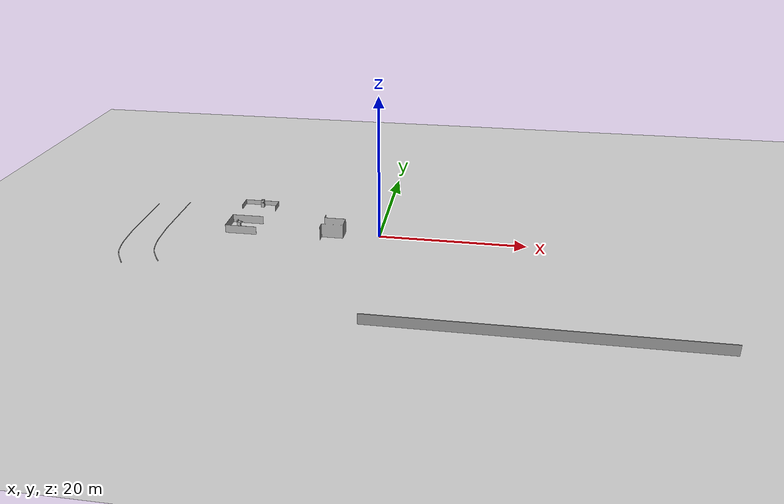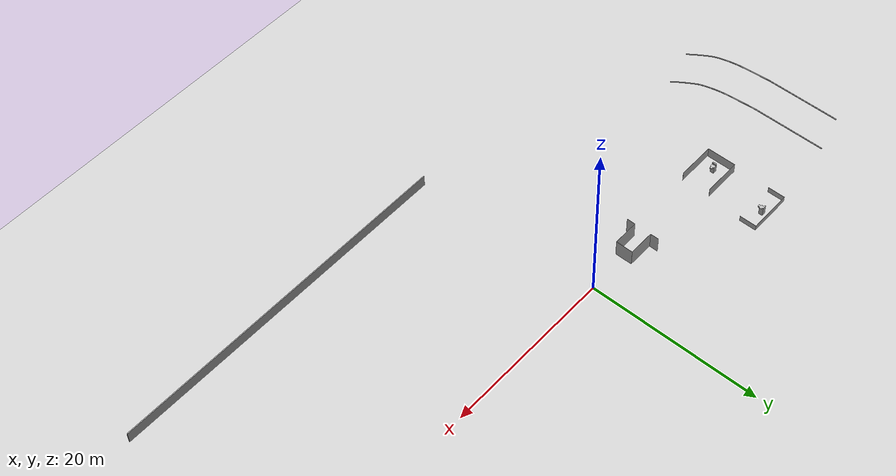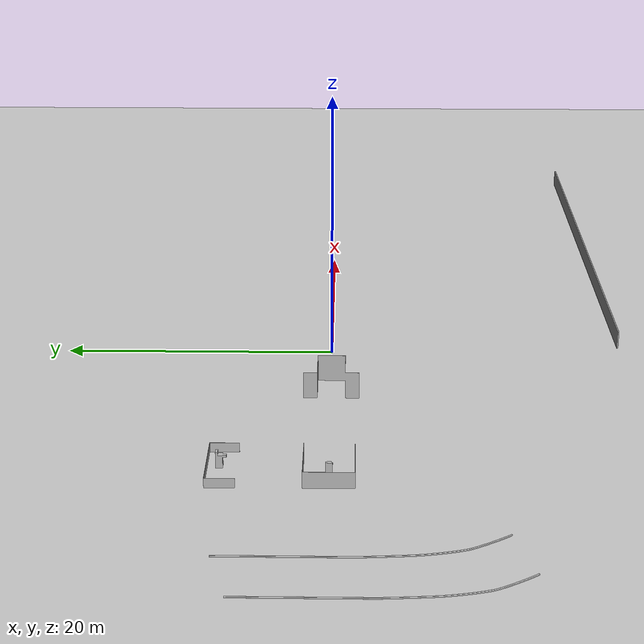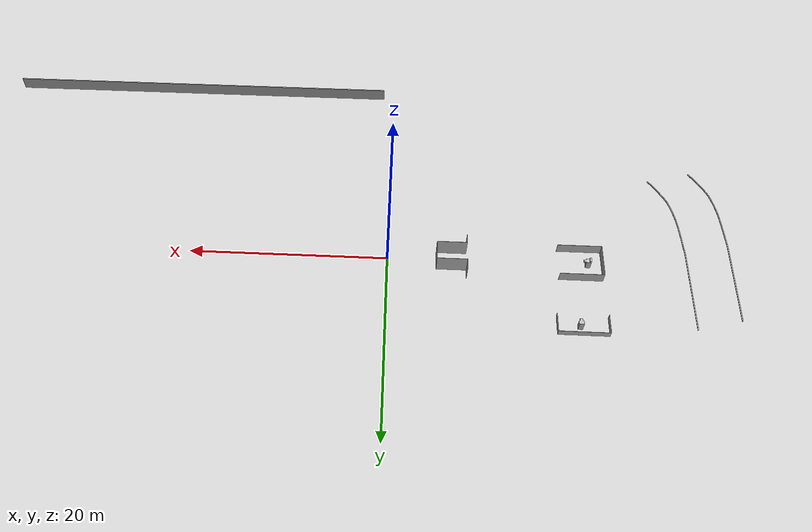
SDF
<sdf version="1.7">
 <world name="default">
  <plugin name="gazebo_ros_state" filename="libgazebo_ros_state.so"/>
  <include><uri>model://ground_plane</uri></include>
  <light name="sun" type="directional">
   <cast_shadows>0</cast_shadows>
   <pose>0 0 10 0 -0 0</pose>
   <diffuse>0.8 0.8 0.8 1</diffuse>
   <specular>0.2 0.2 0.2 1</specular>
   <attenuation>
    <range>1000</range>
    <constant>0.9</constant>
    <linear>0.01</linear>
    <quadratic>0.001</quadratic>
   </attenuation>
   <direction>-0.5 0.1 -0.9</direction>
   <spot><inner_angle>0</inner_angle><outer_angle>0</outer_angle><falloff>0</falloff></spot>
  </light>
  <scene><shadows>0</shadows><ambient>0.4 0.4 0.4 1</ambient><background>0.7 0.7 0.7 1</background></scene>
  <physics type="ode">
   <real_time_update_rate>100</real_time_update_rate>
   <max_step_size>0.01</max_step_size>
   <real_time_factor>1</real_time_factor>
   <ode>
    <solver>
     <type>quick</type>
     <iters>150</iters>
     <precon_iters>0</precon_iters>
     <sor>1.0</sor>
     <use_dynamic_moi_rescaling>0</use_dynamic_moi_rescaling>
    </solver>
    <constraints>
     <cfm>1e-05</cfm>
     <erp>0.2</erp>
     <contact_max_correcting_vel>2000</contact_max_correcting_vel>
     <contact_surface_layer>0.001</contact_surface_layer>
    </constraints>
   </ode>
  </physics>
  <gravity>0 0 -9.8</gravity>
  <magnetic_field>6e-06 2.3e-05 -4.2e-05</magnetic_field>
  <atmosphere type="adiabatic"/>
  <model name="long_box_1">
   <link name="link">
    <inertial>
     <mass>10</mass>
     <inertia>
      <ixx>1.587</ixx>
      <ixy>0</ixy>
      <ixz>0</ixz>
      <iyy>34.872333</iyy>
      <iyz>0</iyz>
      <izz>33.285333</izz>
     </inertia>
    </inertial>
    <pose>-0.148859 -21.6674 0.356896 0 0 1.5708</pose>
    <visual name="visual">
     <geometry><box><size>41.0 0.1 1.38</size></box></geometry>
     <material>
      <script><name>Gazebo/Grey</name><uri>file://media/materials/scripts/gazebo.material</uri></script>
      <shader type="pixel"/>
     </material>
     <cast_shadows>0</cast_shadows>
    </visual>
    <collision name="collision"><geometry><box><size>41.0 0.1 1.38</size></box></geometry></collision>
   </link>
   <static>1</static>
   <allow_auto_disable>false</allow_auto_disable>
   <pose>-0.148859 -21.6674 0.356896 0 0 1.5708</pose>
  </model>
  <include><uri>model://bn_sim</uri><pose>-20 0 0 0 -0 1.57</pose></include>
 </world>
</sdf>

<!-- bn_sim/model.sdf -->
<sdf version="1.6">
  <model name="bn_sim_default">
    <static>true</static>
    <link name="walls">>
      <visual name="walls_v">
        <geometry>
          <mesh>
            <uri>model://bn_sim/meshes/walls.stl</uri>
            <scale>0.1 0.1 0.1</scale>
          </mesh>
        </geometry>
      </visual>
      <collision name="walls_c">
        <geometry>
          <mesh>
            <uri>model://bn_sim/meshes/walls.stl</uri>
            <scale>0.1 0.1 0.1</scale>
          </mesh>
        </geometry>
      </collision>
    </link>
    <link name="charger">
      <visual name="marker_v">
        <pose>0 0 0.04 0 0 0</pose>
        <geometry>
          <mesh>
            <uri>model://bn_sim/meshes/marker.stl</uri>
            <scale>0.15 0.15 0.15</scale>
          </mesh>
        </geometry>
        <material>
          <ambient>0 0 0 1</ambient>
          <diffuse>0 0 0 1</diffuse>
          <specular>0 0 0 1</specular>
          <emissive>0 0 0 1</emissive>
        </material>
      </visual>
      <visual name="charger_v">
        <pose>0 0 0.04 0 0 0</pose>
        <geometry>
          <mesh>
            <uri>model://bn_sim/meshes/charge.stl</uri>
            <scale>0.15 0.15 0.15</scale>
          </mesh>
        </geometry>
      </visual>
      <collision name="charger_c">
        <pose>0 0 0.04 0 0 0</pose>
        <geometry>
          <mesh>
            <uri>model://bn_sim/meshes/charge.stl</uri>
            <scale>0.15 0.15 0.15</scale>
          </mesh>
        </geometry>
      </collision>
    </link>
    <link name="charger_2">
      <pose>7.2 -1.3 0.04 0 0 -1.5708</pose>
      <visual name="marker_v">
        <geometry>
          <mesh>
            <uri>model://bn_sim/meshes/marker.stl</uri>
            <scale>0.15 0.15 0.15</scale>
          </mesh>
        </geometry>
        <material>
          <ambient>0 0 0 1</ambient>
          <diffuse>0 0 0 1</diffuse>
          <specular>0 0 0 1</specular>
          <emissive>0 0 0 1</emissive>
        </material>
      </visual>
      <visual name="charger_v">
        <geometry>
          <mesh>
            <uri>model://bn_sim/meshes/charge.stl</uri>
            <scale>0.15 0.15 0.15</scale>
          </mesh>
        </geometry>
      </visual>
      <collision name="charger_c">
        <geometry>
          <mesh>
            <uri>model://bn_sim/meshes/charge.stl</uri>
            <scale>0.15 0.15 0.15</scale>
          </mesh>
        </geometry>
      </collision>
    </link>
  </model>
</sdf>
